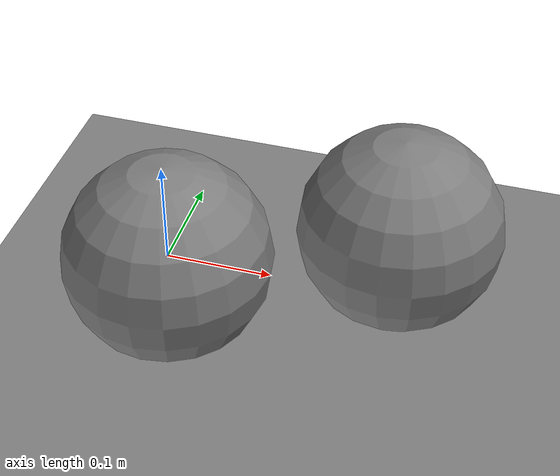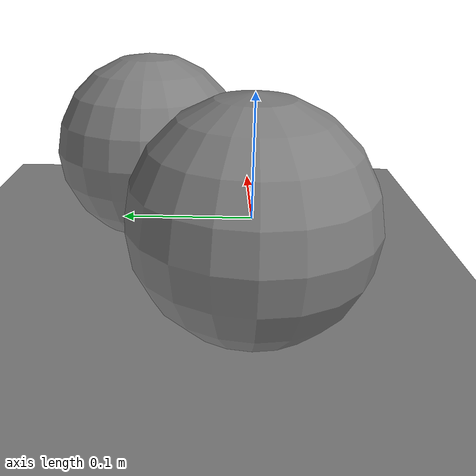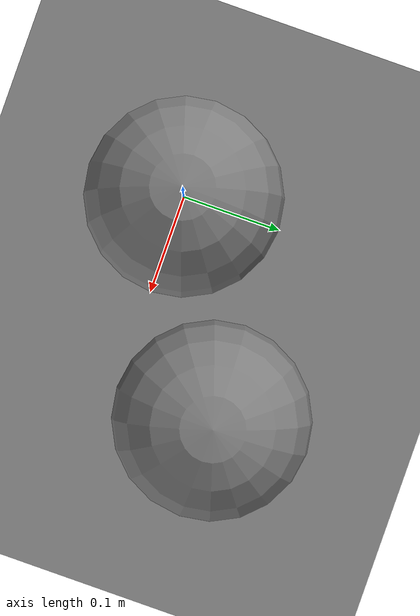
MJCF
<mujoco><option timestep=".0005" integrator="Euler" gravity="0 0 -9.81" solver="Newton" cone="pyramidal" jacobian="auto"><flag constraint="enable" warmstart="disable" island="disable" /></option><worldbody><body name="carrier_0"><freejoint /><inertial pos="0 0 0" mass=".05" diaginertia=".0002 .0002 .0002" /><body><joint name="root" type="ball" limited="true" frictionloss=".002" range="0 1.5" /><geom size=".1" /><site name="ref" quat=".9238795325 .3826834324 0 0" /><body pos=".2 .1 0"><joint name="j" type="ball" limited="true" frictionloss=".002" range="0 1.5" /><geom size=".1" /><site name="s" quat=".9659258263 0 .2588190451 0" /></body></body></body><geom name="controller_floor" type="plane" size="3 3 .1" pos="0 0 -.095" friction=".6 .01 .001" condim="3" /></worldbody><actuator><general site="s" refsite="ref" input="expmap" forcelimited="true" forcerange="0 .08" dyntype="integrator" gaintype="so3" biastype="so3" actdim="3" gainprm="4" biasprm="0 -4.0 -0.3" /></actuator></mujoco>
